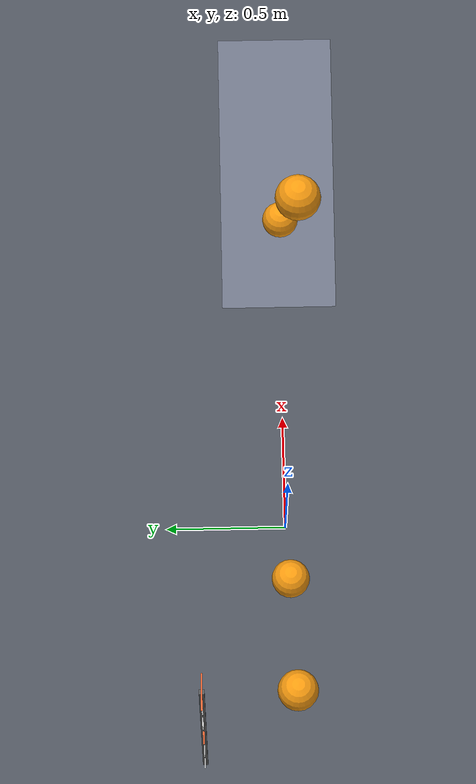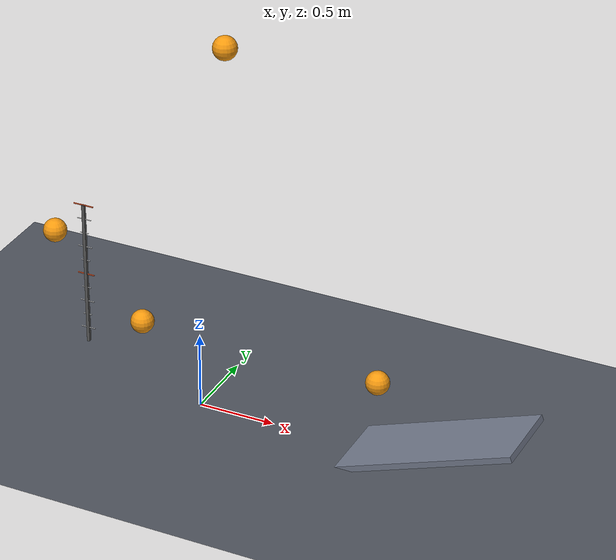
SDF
<?xml version="1.0" ?>
<sdf version="1.11">
  <world name="mars">

    <physics name="250hz" type="ignored">
      <max_step_size>0.004</max_step_size>
      <real_time_factor>1.0</real_time_factor>
    </physics>

    <plugin filename="gz-sim-physics-system"
            name="gz::sim::systems::Physics"/>
    <plugin filename="gz-sim-user-commands-system"
            name="gz::sim::systems::UserCommands"/>
    <plugin filename="gz-sim-scene-broadcaster-system"
            name="gz::sim::systems::SceneBroadcaster"/>

    <gravity>0 0 -9.8</gravity>
    <scene>
      <ambient>0.7 0.7 0.7 1</ambient>
      <background>0.7 0.75 0.8 1</background>
      <shadows>true</shadows>
    </scene>

    <light type="directional" name="sun">
      <cast_shadows>true</cast_shadows>
      <pose>0 0 10 0 0 0</pose>
      <diffuse>0.8 0.8 0.8 1</diffuse>
      <specular>0.2 0.2 0.2 1</specular>
      <direction>-0.5 0.1 -0.9</direction>
    </light>

    <!-- Alfombra FRC, con el mismo mu que los mundos de partido: calibrar
         contra un suelo distinto del que se usa despues no sirve de nada. -->
    <model name="ground_plane">
      <static>true</static>
      <link name="link">
        <collision name="collision">
          <geometry><plane><normal>0 0 1</normal></plane></geometry>
          <surface>
            <friction><ode><mu>0.9</mu><mu2>0.9</mu2></ode></friction>
          </surface>
        </collision>
        <visual name="visual">
          <geometry><plane><normal>0 0 1</normal><size>16.54 8.21</size></plane></geometry>
          <material>
            <ambient>0.16 0.17 0.19 1</ambient>
            <diffuse>0.30 0.32 0.36 1</diffuse>
          </material>
        </visual>
      </link>
    </model>

    <!-- Regla vertical: marcas cada 10 cm hasta 1 m, para leer la altura del
         rebote a ojo en la ventana sin tener que instrumentar nada. -->
    <model name="ruler">
      <static>true</static>
      <pose>-1.0 0.35 0 0 0 0</pose>
      <link name="link">
        <visual name="post">
          <pose>0 0 0.5 0 0 0</pose>
          <geometry><box><size>0.02 0.02 1.0</size></box></geometry>
          <material><ambient>0.2 0.2 0.2 1</ambient><diffuse>0.35 0.35 0.35 1</diffuse></material>
        </visual>
        <visual name="m10"><pose>0 0 0.10 0 0 0</pose><geometry><box><size>0.10 0.004 0.004</size></box></geometry><material><diffuse>1 1 1 1</diffuse></material></visual>
        <visual name="m20"><pose>0 0 0.20 0 0 0</pose><geometry><box><size>0.06 0.004 0.004</size></box></geometry><material><diffuse>1 1 1 1</diffuse></material></visual>
        <visual name="m30"><pose>0 0 0.30 0 0 0</pose><geometry><box><size>0.10 0.004 0.004</size></box></geometry><material><diffuse>1 1 1 1</diffuse></material></visual>
        <visual name="m40"><pose>0 0 0.40 0 0 0</pose><geometry><box><size>0.06 0.004 0.004</size></box></geometry><material><diffuse>1 1 1 1</diffuse></material></visual>
        <visual name="m50"><pose>0 0 0.50 0 0 0</pose><geometry><box><size>0.12 0.006 0.006</size></box></geometry><material><diffuse>1 0.4 0.2 1</diffuse></material></visual>
        <visual name="m60"><pose>0 0 0.60 0 0 0</pose><geometry><box><size>0.06 0.004 0.004</size></box></geometry><material><diffuse>1 1 1 1</diffuse></material></visual>
        <visual name="m70"><pose>0 0 0.70 0 0 0</pose><geometry><box><size>0.10 0.004 0.004</size></box></geometry><material><diffuse>1 1 1 1</diffuse></material></visual>
        <visual name="m80"><pose>0 0 0.80 0 0 0</pose><geometry><box><size>0.06 0.004 0.004</size></box></geometry><material><diffuse>1 1 1 1</diffuse></material></visual>
        <visual name="m90"><pose>0 0 0.90 0 0 0</pose><geometry><box><size>0.10 0.004 0.004</size></box></geometry><material><diffuse>1 1 1 1</diffuse></material></visual>
        <visual name="m100"><pose>0 0 1.00 0 0 0</pose><geometry><box><size>0.14 0.006 0.006</size></box></geometry><material><diffuse>1 0.4 0.2 1</diffuse></material></visual>
      </link>
    </model>

    <!-- La de referencia: 1.00 m, la misma altura que se mide a mano. -->
    <include>
      <uri>model://fuel</uri>
      <name>fuel_drop_1m</name>
      <pose>-1.0 0 1.0 0 0 0</pose>
    </include>

    <!-- Media altura y dos veces y media: la restitucion real cae con la
         velocidad de impacto, y con tres puntos se ve si un solo coeficiente
         alcanza para el rango que importa. -->
    <include>
      <uri>model://fuel</uri>
      <name>fuel_drop_050</name>
      <pose>-0.4 0 0.5 0 0 0</pose>
    </include>
    <include>
      <uri>model://fuel</uri>
      <name>fuel_drop_250</name>
      <pose>0.2 0 2.5 0 0 0</pose>
    </include>

    <!-- Rampa de 20 grados para la friccion: rodar o deslizar. -->
    <model name="ramp">
      <static>true</static>
      <pose>1.6 0 0.18 0 -0.349 0</pose>
      <link name="link">
        <collision name="collision">
          <geometry><box><size>1.2 0.5 0.04</size></box></geometry>
          <surface>
            <friction><ode><mu>0.9</mu><mu2>0.9</mu2></ode></friction>
          </surface>
        </collision>
        <visual name="visual">
          <geometry><box><size>1.2 0.5 0.04</size></box></geometry>
          <material><ambient>0.2 0.22 0.25 1</ambient><diffuse>0.45 0.48 0.55 1</diffuse></material>
        </visual>
      </link>
    </model>
    <include>
      <uri>model://fuel</uri>
      <name>fuel_ramp</name>
      <pose>1.2 0 0.5 0 0 0</pose>
    </include>

  </world>
</sdf>

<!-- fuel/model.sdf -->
<sdf version="1.11">
  <model name="fuel">
    <link name="link">

      <inertial>
        <mass>0.215</mass>
        <inertia>
          <ixx>4.8375e-4</ixx><ixy>0</ixy><ixz>0</ixz>
          <iyy>4.8375e-4</iyy><iyz>0</iyz>
          <izz>4.8375e-4</izz>
        </inertia>
      </inertial>

      <collision name="collision">
        <geometry><sphere><radius>0.075</radius></sphere></geometry>
        <surface>
          <friction>
            <ode>
              <mu>0.85</mu>
              <mu2>0.85</mu2>
            </ode>
          </friction>
        </surface>
      </collision>

      <visual name="visual">
        <geometry><sphere><radius>0.075</radius></sphere></geometry>
        <material>
          <ambient>0.38 0.24 0.02 1</ambient>
          <diffuse>0.956 0.597 0.056 1</diffuse>
          <specular>0.05 0.05 0.05 1</specular>
        </material>
      </visual>

    </link>
  </model>
</sdf>
